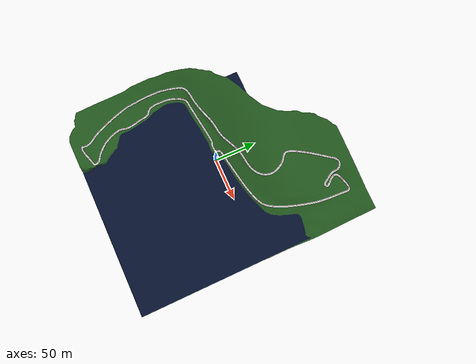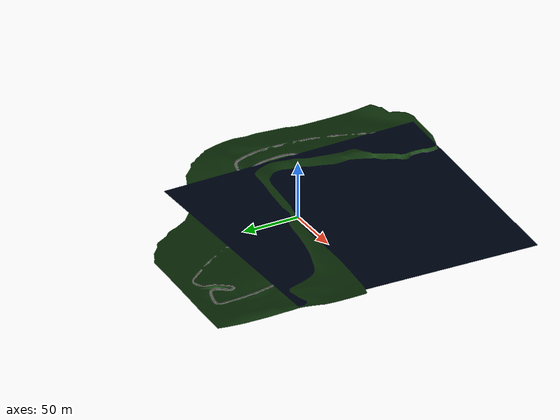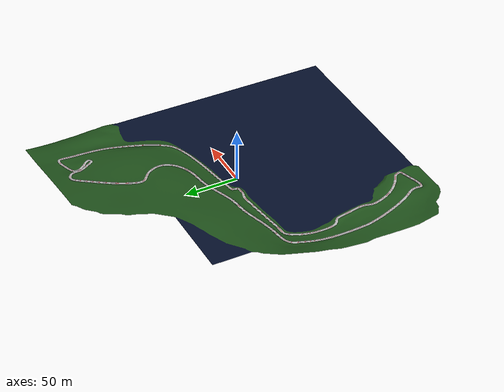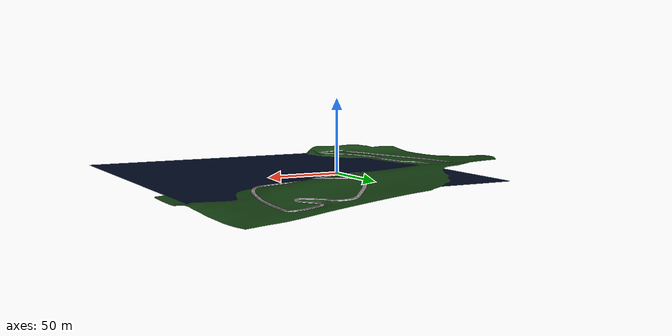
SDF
<?xml version="1.0"?>
<sdf version="1.7">
  <model name="circuito">
    <static>true</static> <!-- Cambia a false si es un objeto dinámico -->
    <link name="link">
      <visual name="grass">
        <geometry>
          <mesh>
            <uri>model://monaco/meshes/monaco.dae</uri>
            <scale>0.2 0.2 0.2</scale>
          </mesh>
        </geometry>
      </visual>

      <visual name="track">
        <geometry>
          <mesh>
            <uri>model://monaco/meshes/monaco_track.dae</uri>
            <scale>0.2 0.2 0.2</scale>
          </mesh>
        </geometry>
      </visual>

      <collision name="collision">
        <geometry>
          <mesh>
            <uri>model://monaco/meshes/monaco_track.dae</uri>
            <scale>0.2 0.2 0.2</scale>
          </mesh>
        </geometry>
      </collision>
    </link>
  </model>
</sdf>
